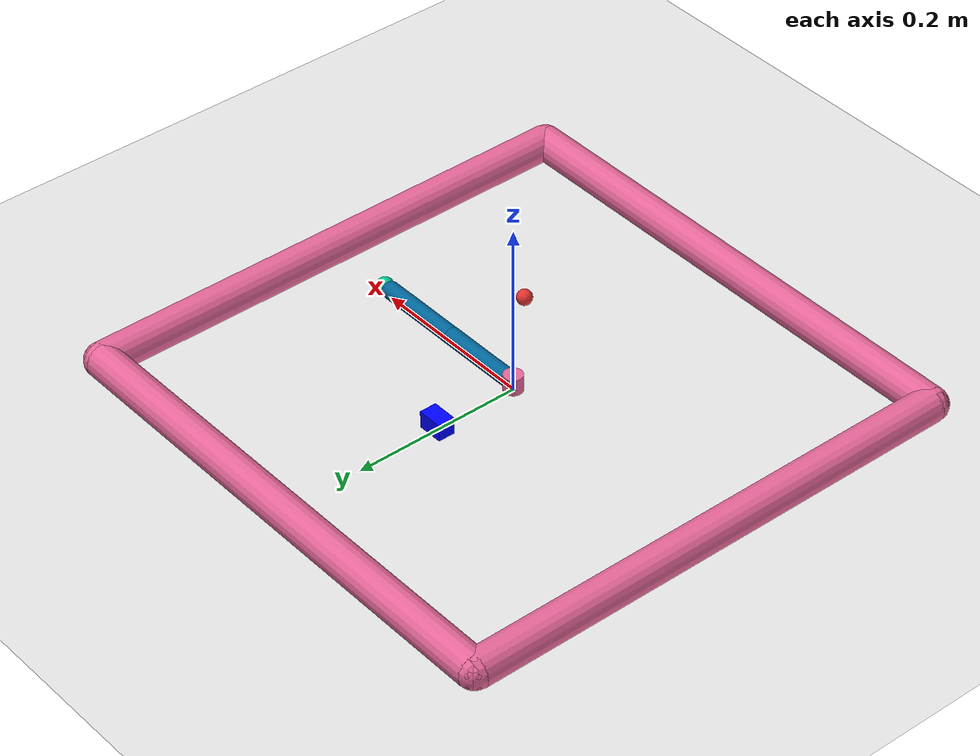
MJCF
<mujoco model="reacher">
	<compiler angle="radian" inertiafromgeom="true"/>
	<default>
		<joint armature="1" damping="1" limited="true"/>
		<geom contype="0" friction="1 0.1 0.1" rgba="0.7 0.7 0 1"/>
	</default>
    <!-- Asset -->
    <asset>
        <!-- Ground -->
        <texture type="2d" name="groundplane" builtin="checker" mark="edge" rgb1="0.3 0.4 0.5"
            rgb2="0.1 0.2 0.3" markrgb="0.8 0.8 0.8" width="300" height="300" />
        <material name="groundplane" texture="groundplane" texuniform="true" texrepeat="2 2"
            reflectance="0.2" />
    </asset>

	<option gravity="0 0 -9.81" integrator="RK4" timestep="0.01"/>
	<worldbody>
		<!-- Arena -->
		<geom conaffinity="0" contype="0" name="ground" pos="0 0 0" rgba="0.9 0.9 0.9 1" size="1 1 10" type="plane"/>
		<geom conaffinity="0" fromto="-.3 -.3 .01 .3 -.3 .01" name="sideS" rgba="0.9 0.4 0.6 1" size=".02" type="capsule"/>
		<geom conaffinity="0" fromto=" .3 -.3 .01 .3  .3 .01" name="sideE" rgba="0.9 0.4 0.6 1" size=".02" type="capsule"/>
		<geom conaffinity="0" fromto="-.3  .3 .01 .3  .3 .01" name="sideN" rgba="0.9 0.4 0.6 1" size=".02" type="capsule"/>
		<geom conaffinity="0" fromto="-.3 -.3 .01 -.3 .3 .01" name="sideW" rgba="0.9 0.4 0.6 1" size=".02" type="capsule"/>
		<!-- Arm -->
		<geom conaffinity="0" contype="0" fromto="0 0 0 0 0 0.02" name="root" rgba="0.9 0.4 0.6 1" size=".011" type="cylinder"/>
		<body name="body0" pos="0 0 .01">
			<geom fromto="0 0 0 0.1 0 0" name="link0" rgba="0.0 0.4 0.6 1" size=".01" type="capsule"/>
			<joint axis="0 0 1" limited="false" name="joint0" pos="0 0 0" type="hinge"/>
			<body name="body1" pos="0.1 0 0">
				<joint axis="0 0 1" limited="true" name="joint1" pos="0 0 0" range="-3.0 3.0" type="hinge"/>
				<geom fromto="0 0 0 0.1 0 0" name="link1" rgba="0.0 0.4 0.6 1" size=".01" type="capsule"/>
				<body name="fingertip" pos="0.11 0 0">
					<geom contype="0" name="fingertip" pos="0 0 0" rgba="0.0 0.8 0.6 1" size=".01" type="sphere"/>
				</body>
			</body>
		</body>
		<!-- Target -->
		<body name="target" pos=".1 -.1 .01">
			<joint armature="0" axis="1 0 0" damping="0" limited="true" name="target_x" pos="0 0 0" range="-.27 .27" ref=".1" stiffness="0" type="slide"/>
			<joint armature="0" axis="0 1 0" damping="0" limited="true" name="target_y" pos="0 0 0" range="-.27 .27" ref="-.1" stiffness="0" type="slide"/>
			<geom conaffinity="0" contype="0" name="target" pos="0 0 0" rgba="0.9 0.2 0.2 1" size=".009" type="sphere"/>
		</body>
        <body name="obj_box_01" pos="0.0 0.1 0.01" euler="0 0 0">
            <geom name="obj_box_01" size="0.015 0.01 0.01" type="box" rgba="0.0 0. 1.0 1" density="500" friction="1 0.005 0.0001" />
            <inertial pos="0 0 0" mass="1" diaginertia="0 0 0" />
		</body>
	</worldbody>
	<actuator>
		<motor ctrllimited="true" ctrlrange="-1.0 1.0" gear="200.0" joint="joint0"/>
		<motor ctrllimited="true" ctrlrange="-1.0 1.0" gear="200.0" joint="joint1"/>
	</actuator>
</mujoco>
